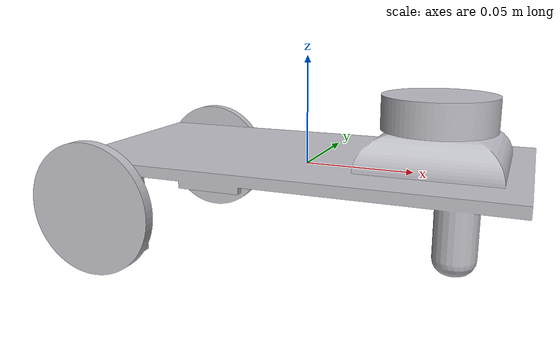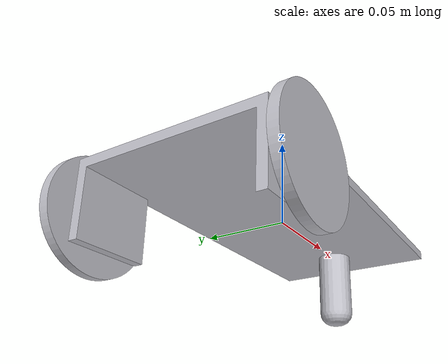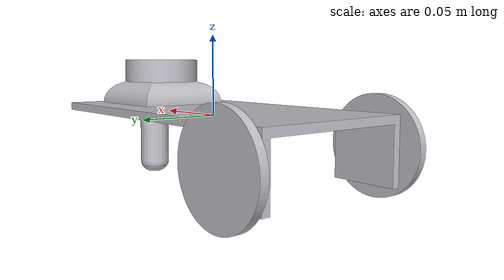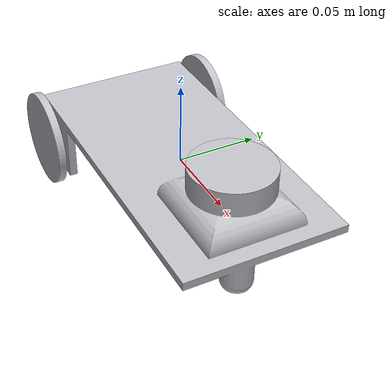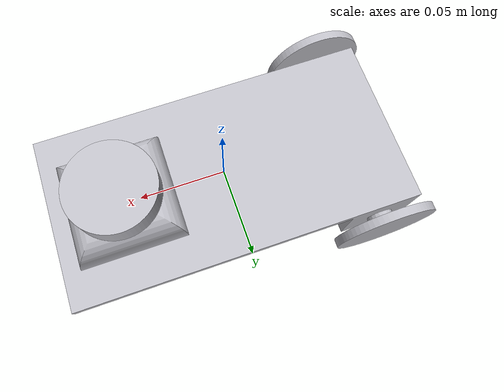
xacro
<?xml version="1.0" ?>
<robot name="final" xmlns:xacro="http://www.ros.org/wiki/xacro">

<xacro:include filename="$(find final_description)/urdf/materials.xacro" />
<xacro:include filename="$(find final_description)/urdf/final.trans" />
<xacro:include filename="$(find final_description)/urdf/final.gazebo" />
<link name="base_link">
  <inertial>
    <origin xyz="0.013355888405543588 -1.0631979445537189e-05 0.0011261319673747886" rpy="0 0 0"/>
    <mass value="1.357578615599486"/>
    <inertia ixx="0.0012" iyy="0.005194" izz="0.006054" ixy="-1e-06" iyz="-0.0" ixz="-0.000227"/>
  </inertial>
  <visual>
    <origin xyz="0 0 0" rpy="0 0 0"/>
    <geometry>
      <mesh filename="package://final_description/meshes/base_link.stl" scale="0.001 0.001 0.001"/>
    </geometry>
    <material name="silver"/>
  </visual>
  <collision>
    <origin xyz="0 0 0" rpy="0 0 0"/>
    <geometry>
      <mesh filename="package://final_description/meshes/base_link.stl" scale="0.001 0.001 0.001"/>
    </geometry>
  </collision>
</link>

<link name="right_wheel_1">
  <inertial>
    <origin xyz="4.4914076768876043e-07 -0.0025000000000000022 -7.919004115473915e-08" rpy="0 0 0"/>
    <mass value="0.11097676048805943"/>
    <inertia ixx="2.5e-05" iyy="5e-05" izz="2.5e-05" ixy="-0.0" iyz="0.0" ixz="-0.0"/>
  </inertial>
  <visual>
    <origin xyz="0.079717 0.055 0.014581" rpy="0 0 0"/>
    <geometry>
      <mesh filename="package://final_description/meshes/right_wheel_1.stl" scale="0.001 0.001 0.001"/>
    </geometry>
    <material name="silver"/>
  </visual>
  <collision>
    <origin xyz="0.079717 0.055 0.014581" rpy="0 0 0"/>
    <geometry>
      <mesh filename="package://final_description/meshes/right_wheel_1.stl" scale="0.001 0.001 0.001"/>
    </geometry>
  </collision>
</link>

<link name="left_wheel_1">
  <inertial>
    <origin xyz="2.685181253458957e-07 0.0025000000000000022 -4.393111674317468e-07" rpy="0 0 0"/>
    <mass value="0.1109767604880594"/>
    <inertia ixx="2.5e-05" iyy="5e-05" izz="2.5e-05" ixy="-0.0" iyz="0.0" ixz="0.0"/>
  </inertial>
  <visual>
    <origin xyz="0.079952 -0.055 0.015051" rpy="0 0 0"/>
    <geometry>
      <mesh filename="package://final_description/meshes/left_wheel_1.stl" scale="0.001 0.001 0.001"/>
    </geometry>
    <material name="silver"/>
  </visual>
  <collision>
    <origin xyz="0.079952 -0.055 0.015051" rpy="0 0 0"/>
    <geometry>
      <mesh filename="package://final_description/meshes/left_wheel_1.stl" scale="0.001 0.001 0.001"/>
    </geometry>
  </collision>
</link>

<link name="lair_1">
  <inertial>
    <origin xyz="-6.938893903907228e-18 -8.881784197001253e-18 0.0075" rpy="0 0 0"/>
    <mass value="0.23120158435012378"/>
    <inertia ixx="4e-05" iyy="4e-05" izz="7.2e-05" ixy="-0.0" iyz="0.0" ixz="0.0"/>
  </inertial>
  <visual>
    <origin xyz="-0.06 -0.0 -0.02" rpy="0 0 0"/>
    <geometry>
      <mesh filename="package://final_description/meshes/lair_1.stl" scale="0.001 0.001 0.001"/>
    </geometry>
    <material name="silver"/>
  </visual>
  <collision>
    <origin xyz="-0.06 -0.0 -0.02" rpy="0 0 0"/>
    <geometry>
      <mesh filename="package://final_description/meshes/lair_1.stl" scale="0.001 0.001 0.001"/>
    </geometry>
  </collision>
</link>

<joint name="Rev1" type="continuous">
  <origin xyz="-0.079717 -0.055 -0.014581" rpy="0 0 0"/>
  <parent link="base_link"/>
  <child link="right_wheel_1"/>
  <axis xyz="0.0 -1.0 0.0"/>
</joint>

<joint name="Rev2" type="continuous">
  <origin xyz="-0.079952 0.055 -0.015051" rpy="0 0 0"/>
  <parent link="base_link"/>
  <child link="left_wheel_1"/>
  <axis xyz="0.0 1.0 0.0"/>
</joint>

<joint name="Rigid3" type="fixed">
  <origin xyz="0.06 0.0 0.02" rpy="0 0 0"/>
  <parent link="base_link"/>
  <child link="lair_1"/>
</joint>

</robot>

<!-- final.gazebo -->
<robot name="final" xmlns:xacro="http://www.ros.org/wiki/xacro" >

<xacro:property name="body_color" value="Gazebo/Silver" />

<gazebo>
  <plugin name="control" filename="libgazebo_ros_control.so"/>
</gazebo>
<gazebo reference="base_link">
  <material>${body_color}</material>
  <mu1>0.2</mu1>
  <mu2>0.2</mu2>
  <selfCollide>true</selfCollide>
  <gravity>true</gravity>
</gazebo>

<gazebo reference="right_wheel_1">
  <material>${body_color}</material>
  <mu1>0.2</mu1>
  <mu2>0.2</mu2>
  <selfCollide>true</selfCollide>
</gazebo>

<gazebo reference="left_wheel_1">
  <material>${body_color}</material>
  <mu1>0.2</mu1>
  <mu2>0.2</mu2>
  <selfCollide>true</selfCollide>
</gazebo>

<gazebo reference="lair_1">
  <material>${body_color}</material>
  <mu1>0.2</mu1>
  <mu2>0.2</mu2>
  <selfCollide>true</selfCollide>
</gazebo>

</robot>
